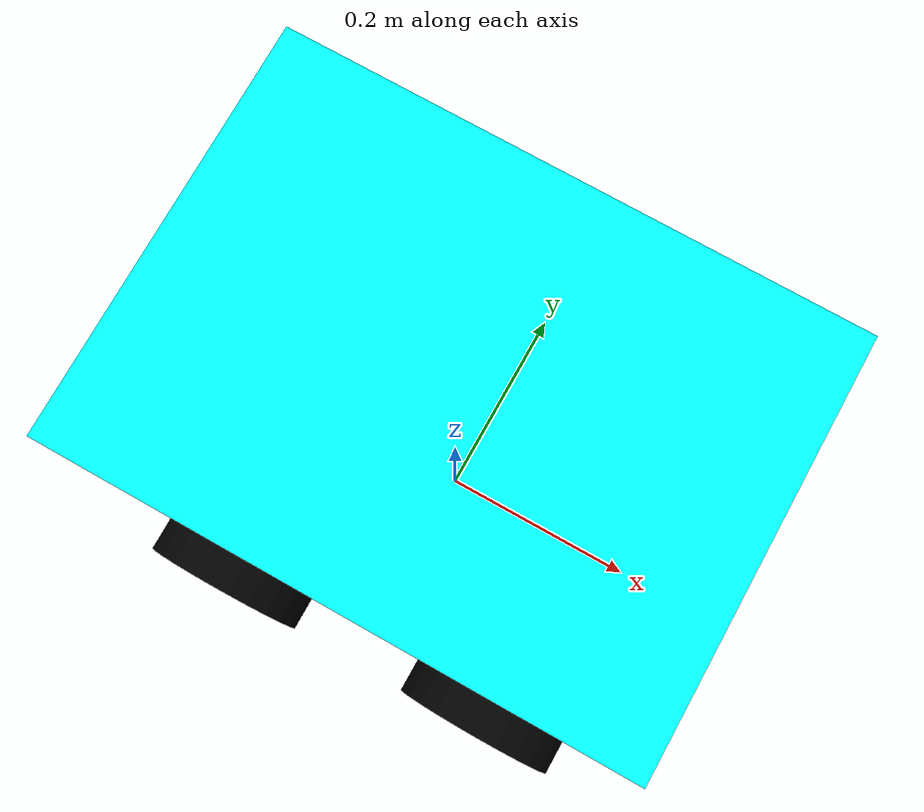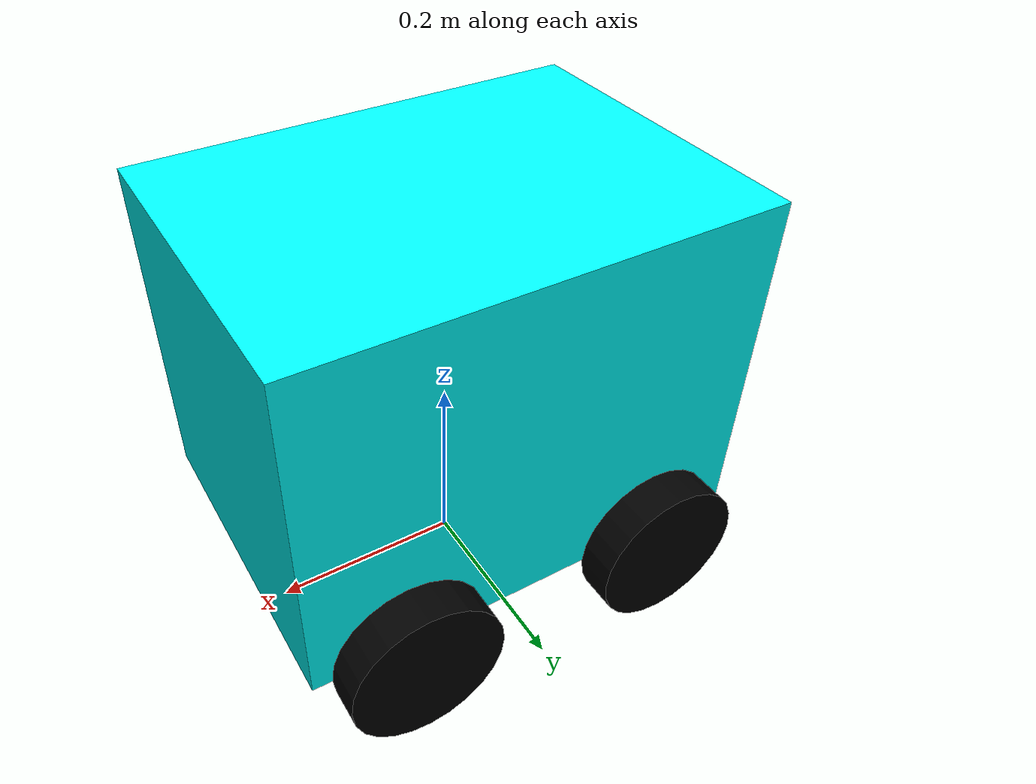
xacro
<?xml version="1.0"?>
<robot name="texto_mobil" xmlns:xacro="http://www.ros.org/wiki/xacro">

  <material name="cyan">
    <color rgba="0 1 1 1"/>
  </material>

  <material name="black">
    <color rgba="0 0 0 1"/>
  </material>

  <xacro:property name="base_width" value="0.48"/>
  <xacro:property name="base_length" value="0.35"/>
  <xacro:property name="base_height" value="0.36"/>

  <xacro:property name="wheel_radius" value="0.08"/>
  <xacro:property name="wheel_length" value="0.04"/>

  <!-- Ana gövde -->
  <link name="base_link">
    <visual>
      <geometry>
        <box size="${base_width} ${base_length} ${base_height}"/>
      </geometry>
      <origin xyz="0 0 ${wheel_radius + (base_height / 2)}" rpy="0 0 0"/>
      <material name="cyan"/>
    </visual>
    <inertial>
      <mass value="5.0"/>
      <origin xyz="0 0 0" rpy="0 0 0"/>
      <inertia ixx="0.1" ixy="0" ixz="0" iyy="0.1" iyz="0" izz="0.1"/>
    </inertial>
  </link>

  <!-- Tekerlekler -->
  <link name="left_front_wheel_link">
    <visual>
      <geometry>
        <cylinder radius="${wheel_radius}" length="${wheel_length}"/>
      </geometry>
      <origin xyz="0 0 ${wheel_radius}" rpy="${pi/2} 0 0"/>
      <material name="black"/>
    </visual>
    <inertial>
      <mass value="1.0"/>
      <origin xyz="0 0 0" rpy="0 0 0"/>
      <inertia ixx="0.01" ixy="0" ixz="0" iyy="0.01" iyz="0" izz="0.01"/>
    </inertial>
  </link>

  <link name="left_rear_wheel_link">
    <visual>
      <geometry>
        <cylinder radius="${wheel_radius}" length="${wheel_length}"/>
      </geometry>
      <origin xyz="0 0 ${wheel_radius}" rpy="${pi/2} 0 0"/>
      <material name="black"/>
    </visual>
    <inertial>
      <mass value="1.0"/>
      <origin xyz="0 0 0" rpy="0 0 0"/>
      <inertia ixx="0.01" ixy="0" ixz="0" iyy="0.01" iyz="0" izz="0.01"/>
    </inertial>
  </link>

  <link name="right_front_wheel_link">
    <visual>
      <geometry>
        <cylinder radius="${wheel_radius}" length="${wheel_length}"/>
      </geometry>
      <origin xyz="0 0 ${wheel_radius}" rpy="${pi/2} 0 0"/>
      <material name="black"/>
    </visual>
    <inertial>
      <mass value="1.0"/>
      <origin xyz="0 0 0" rpy="0 0 0"/>
      <inertia ixx="0.01" ixy="0" ixz="0" iyy="0.01" iyz="0" izz="0.01"/>
    </inertial>
  </link>

  <link name="right_rear_wheel_link">
    <visual>
      <geometry>
        <cylinder radius="${wheel_radius}" length="${wheel_length}"/>
      </geometry>
      <origin xyz="0 0 ${wheel_radius}" rpy="${pi/2} 0 0"/>
      <material name="black"/>
    </visual>
    <inertial>
      <mass value="1.0"/>
      <origin xyz="0 0 0" rpy="0 0 0"/>
      <inertia ixx="0.01" ixy="0" ixz="0" iyy="0.01" iyz="0" izz="0.01"/>
    </inertial>
  </link>

  <!-- Eklemler -->
  <joint name="base_left_front_wheel_joint" type="continuous">
    <parent link="base_link"/>
    <child link="left_front_wheel_link"/>
    <origin xyz="${(base_width / 2) - 0.1} ${(base_length / 2) + (wheel_length / 2)} 0" rpy="0 0 0"/>
    <axis xyz="0 1 0"/>
  </joint>

  <joint name="base_left_rear_wheel_joint" type="continuous">
    <parent link="base_link"/>
    <child link="left_rear_wheel_link"/>
    <origin xyz="${-(base_width / 2) + 0.1} ${(base_length / 2) + (wheel_length / 2)} 0" rpy="0 0 0"/>
    <axis xyz="0 1 0"/>
  </joint>

  <joint name="base_right_front_wheel_joint" type="continuous">
    <parent link="base_link"/>
    <child link="right_front_wheel_link"/>
    <origin xyz="${(base_width / 2) - 0.1} ${-(base_length / 2) - (wheel_length / 2)} 0" rpy="0 0 0"/>
    <axis xyz="0 1 0"/>
  </joint>

  <joint name="base_right_rear_wheel_joint" type="continuous">
    <parent link="base_link"/>
    <child link="right_rear_wheel_link"/>
    <origin xyz="${-(base_width / 2) + 0.1} ${-(base_length / 2) - (wheel_length / 2)} 0" rpy="0 0 0"/>
    <axis xyz="0 1 0"/>
  </joint>

  <!-- LIDAR LINK -->
  <link name="laser">
    <visual>
      <geometry>
        <cylinder radius="0.03" length="0.02"/>
      </geometry>
      <origin xyz="0 0 0" rpy="0 0 0"/>
      <material name="black"/>
    </visual>
    <inertial>
      <mass value="0.1"/>
      <origin xyz="0 0 0" rpy="0 0 0"/>
      <inertia ixx="0.001" ixy="0" ixz="0" iyy="0.001" iyz="0" izz="0.001"/>
    </inertial>
  </link>

  <!-- LIDAR JOINT -->
  <joint name="base_to_laser" type="fixed">
    <parent link="base_link"/>
    <child link="laser"/>
    <origin xyz="0 0 0.2" rpy="0 0 0"/>
  </joint>

</robot>
